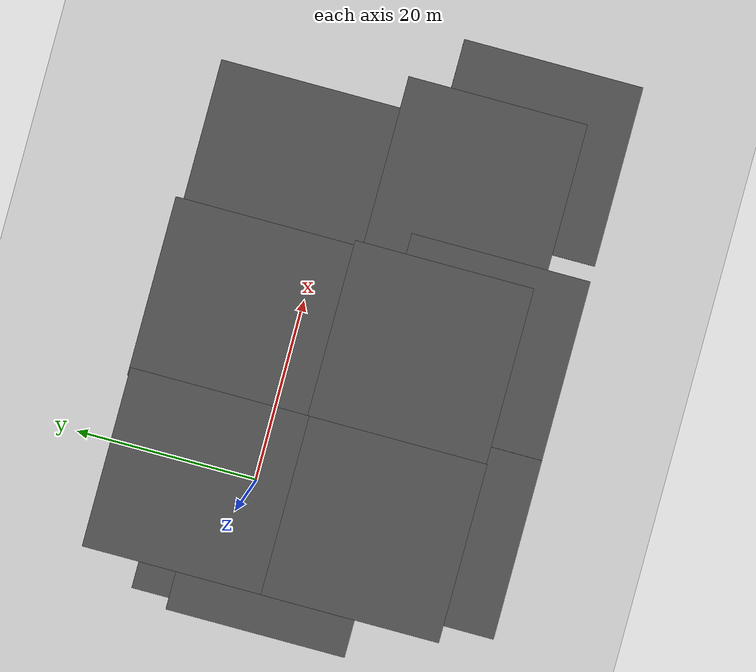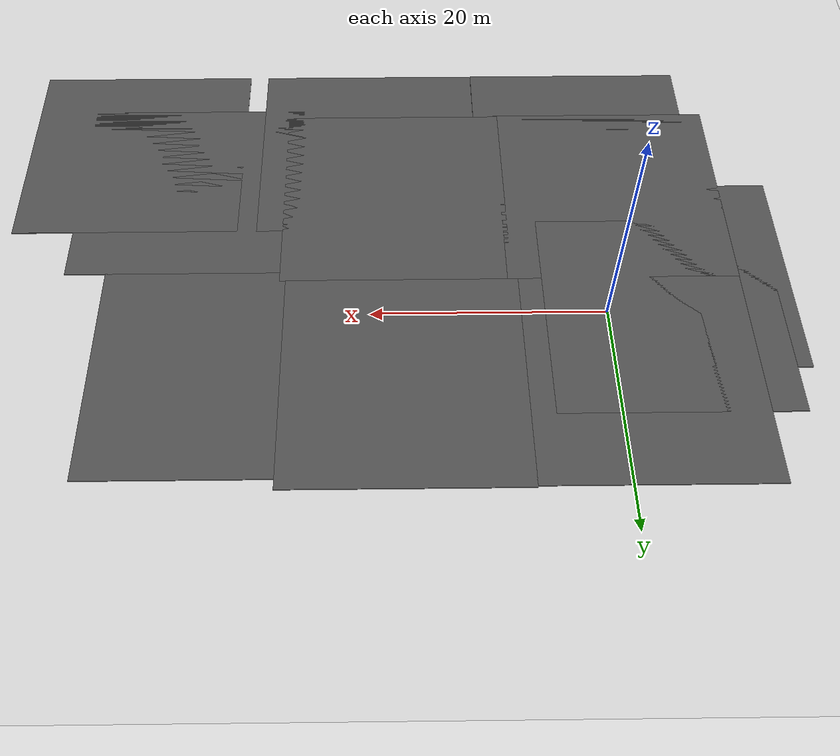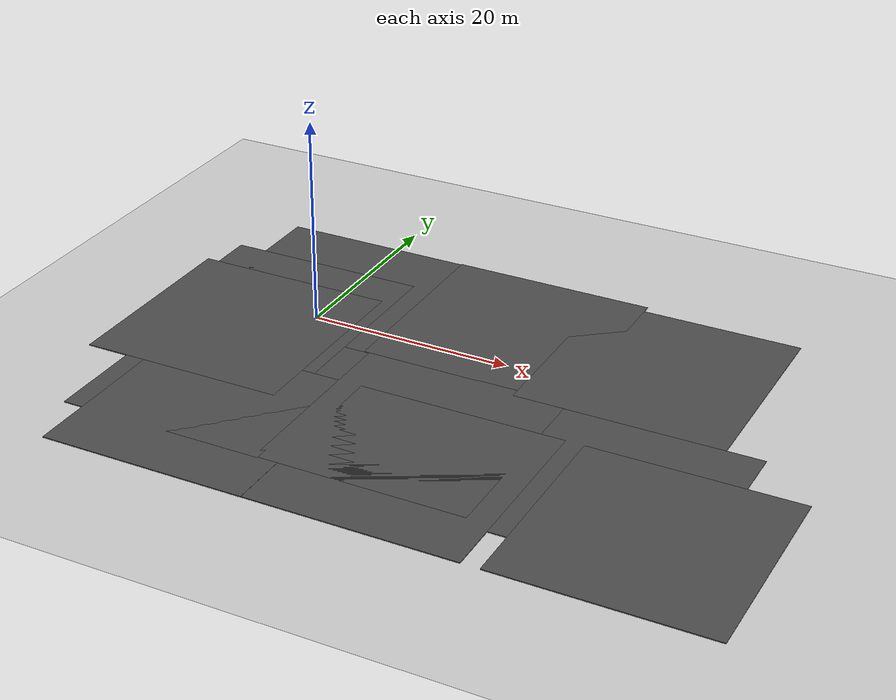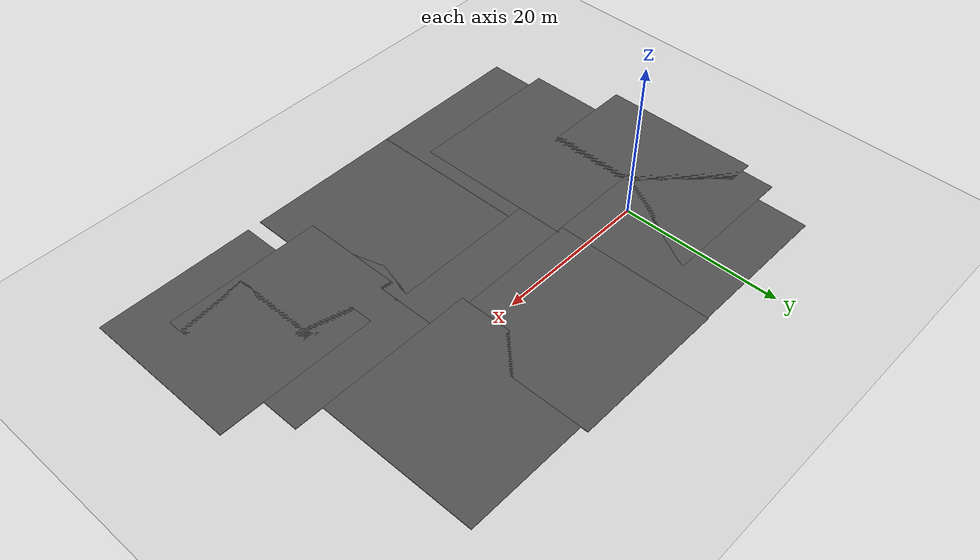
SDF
<sdf version="1.7">
 <world name="default">
  <light name="sun" type="directional">
   <pose>0 0 10 0 -0 0</pose>
   <diffuse>0.8 0.8 0.8 1</diffuse>
   <specular>0.2 0.2 0.2 1</specular>
   <attenuation>
    <range>1000</range>
    <constant>0.9</constant>
    <linear>0.01</linear>
    <quadratic>0.001</quadratic>
   </attenuation>
   <direction>-0.5 0.1 -0.9</direction>
   <spot><inner_angle>0</inner_angle><outer_angle>0</outer_angle><falloff>0</falloff></spot>
  </light>
  <model name="ground_plane">
   <static>1</static>
   <link name="link">
    <collision name="collision">
     <geometry><plane><normal>0 0 1</normal><size>100 100</size></plane></geometry>
     <surface><friction><ode><mu>100</mu><mu2>50</mu2></ode></friction></surface>
    </collision>
    <visual name="visual">
     <cast_shadows>0</cast_shadows>
     <geometry><plane><normal>0 0 1</normal><size>100 100</size></plane></geometry>
     <material>
      <script><uri>file://media/materials/scripts/gazebo.material</uri><name>Gazebo/Grey</name></script>
     </material>
    </visual>
   </link>
  </model>
  <gravity>0 0 -9.8</gravity>
  <magnetic_field>6e-06 2.3e-05 -4.2e-05</magnetic_field>
  <atmosphere type="adiabatic"/>
  <physics type="ode">
   <max_step_size>0.001</max_step_size>
   <real_time_factor>1</real_time_factor>
   <real_time_update_rate>1000</real_time_update_rate>
  </physics>
  <scene><ambient>0.4 0.4 0.4 1</ambient><background>0.7 0.7 0.7 1</background><shadows>1</shadows></scene>
  <spherical_coordinates>
   <surface_model>EARTH_WGS84</surface_model>
   <latitude_deg>0</latitude_deg>
   <longitude_deg>0</longitude_deg>
   <elevation>0</elevation>
   <heading_deg>0</heading_deg>
  </spherical_coordinates>
  <model name="asphalt_plane">
   <static>1</static>
   <link name="link">
    <collision name="collision"><geometry><box><size>20 20 0.1</size></box></geometry></collision>
    <visual name="visual">
     <cast_shadows>0</cast_shadows>
     <geometry><box><size>20 20 0.1</size></box></geometry>
     <material>
      <script>
       <uri>model://asphalt_plane/materials/scripts</uri>
       <uri>model://asphalt_plane/materials/textures</uri>
       <name>vrc/asphalt</name>
      </script>
     </material>
    </visual>
   </link>
   <pose>-1.82326 6.22056 0 0 -0 0</pose>
  </model>
  <model name="asphalt_plane_0">
   <static>1</static>
   <link name="link">
    <collision name="collision"><geometry><box><size>20 20 0.1</size></box></geometry></collision>
    <visual name="visual">
     <cast_shadows>0</cast_shadows>
     <geometry><box><size>20 20 0.1</size></box></geometry>
     <material>
      <script>
       <uri>model://asphalt_plane/materials/scripts</uri>
       <uri>model://asphalt_plane/materials/textures</uri>
       <name>vrc/asphalt</name>
      </script>
     </material>
    </visual>
   </link>
   <pose>-1.84175 -13.6895 0 0 -0 0</pose>
  </model>
  <model name="asphalt_plane_1">
   <static>1</static>
   <link name="link">
    <collision name="collision"><geometry><box><size>20 20 0.1</size></box></geometry></collision>
    <visual name="visual">
     <cast_shadows>0</cast_shadows>
     <geometry><box><size>20 20 0.1</size></box></geometry>
     <material>
      <script>
       <uri>model://asphalt_plane/materials/scripts</uri>
       <uri>model://asphalt_plane/materials/textures</uri>
       <name>vrc/asphalt</name>
      </script>
     </material>
    </visual>
   </link>
   <pose>17.7823 -13.5879 0 0 -0 0</pose>
  </model>
  <model name="asphalt_plane_2">
   <static>1</static>
   <link name="link">
    <collision name="collision"><geometry><box><size>20 20 0.1</size></box></geometry></collision>
    <visual name="visual">
     <cast_shadows>0</cast_shadows>
     <geometry><box><size>20 20 0.1</size></box></geometry>
     <material>
      <script>
       <uri>model://asphalt_plane/materials/scripts</uri>
       <uri>model://asphalt_plane/materials/textures</uri>
       <name>vrc/asphalt</name>
      </script>
     </material>
    </visual>
   </link>
   <pose>17.2667 6.33274 0 0 -0 0</pose>
  </model>
  <model name="asphalt_plane_3">
   <static>1</static>
   <link name="link">
    <collision name="collision"><geometry><box><size>20 20 0.1</size></box></geometry></collision>
    <visual name="visual">
     <cast_shadows>0</cast_shadows>
     <geometry><box><size>20 20 0.1</size></box></geometry>
     <material>
      <script>
       <uri>model://asphalt_plane/materials/scripts</uri>
       <uri>model://asphalt_plane/materials/textures</uri>
       <name>vrc/asphalt</name>
      </script>
     </material>
    </visual>
   </link>
   <pose>32.8329 5.45203 0 0 -0 0</pose>
  </model>
  <model name="asphalt_plane_4">
   <static>1</static>
   <link name="link">
    <collision name="collision"><geometry><box><size>20 20 0.1</size></box></geometry></collision>
    <visual name="visual">
     <cast_shadows>0</cast_shadows>
     <geometry><box><size>20 20 0.1</size></box></geometry>
     <material>
      <script>
       <uri>model://asphalt_plane/materials/scripts</uri>
       <uri>model://asphalt_plane/materials/textures</uri>
       <name>vrc/asphalt</name>
      </script>
     </material>
    </visual>
   </link>
   <pose>-6.02996 -4.28035 0 0 -0 0</pose>
  </model>
  <model name="asphalt_plane_5">
   <static>1</static>
   <link name="link">
    <collision name="collision"><geometry><box><size>20 20 0.1</size></box></geometry></collision>
    <visual name="visual">
     <cast_shadows>0</cast_shadows>
     <geometry><box><size>20 20 0.1</size></box></geometry>
     <material>
      <script>
       <uri>model://asphalt_plane/materials/scripts</uri>
       <uri>model://asphalt_plane/materials/textures</uri>
       <name>vrc/asphalt</name>
      </script>
     </material>
    </visual>
   </link>
   <pose>-4.7543 -0.124474 0 0 -0 0</pose>
  </model>
  <model name="asphalt_plane_6">
   <static>1</static>
   <link name="link">
    <collision name="collision"><geometry><box><size>20 20 0.1</size></box></geometry></collision>
    <visual name="visual">
     <cast_shadows>0</cast_shadows>
     <geometry><box><size>20 20 0.1</size></box></geometry>
     <material>
      <script>
       <uri>model://asphalt_plane/materials/scripts</uri>
       <uri>model://asphalt_plane/materials/textures</uri>
       <name>vrc/asphalt</name>
      </script>
     </material>
    </visual>
   </link>
   <pose>0.080374 -19.2931 0 0 -0 0</pose>
  </model>
  <model name="asphalt_plane_7">
   <static>1</static>
   <link name="link">
    <collision name="collision"><geometry><box><size>20 20 0.1</size></box></geometry></collision>
    <visual name="visual">
     <cast_shadows>0</cast_shadows>
     <geometry><box><size>20 20 0.1</size></box></geometry>
     <material>
      <script>
       <uri>model://asphalt_plane/materials/scripts</uri>
       <uri>model://asphalt_plane/materials/textures</uri>
       <name>vrc/asphalt</name>
      </script>
     </material>
    </visual>
   </link>
   <pose>20.0929 -19.2823 0 0 -0 0</pose>
  </model>
  <model name="asphalt_plane_8">
   <static>1</static>
   <link name="link">
    <collision name="collision"><geometry><box><size>20 20 0.1</size></box></geometry></collision>
    <visual name="visual">
     <cast_shadows>0</cast_shadows>
     <geometry><box><size>20 20 0.1</size></box></geometry>
     <material>
      <script>
       <uri>model://asphalt_plane/materials/scripts</uri>
       <uri>model://asphalt_plane/materials/textures</uri>
       <name>vrc/asphalt</name>
      </script>
     </material>
    </visual>
   </link>
   <pose>36.3716 -14.5279 0 0 -0 0</pose>
  </model>
  <model name="asphalt_plane_9">
   <static>1</static>
   <link name="link">
    <collision name="collision"><geometry><box><size>20 20 0.1</size></box></geometry></collision>
    <visual name="visual">
     <cast_shadows>0</cast_shadows>
     <geometry><box><size>20 20 0.1</size></box></geometry>
     <material>
      <script>
       <uri>model://asphalt_plane/materials/scripts</uri>
       <uri>model://asphalt_plane/materials/textures</uri>
       <name>vrc/asphalt</name>
      </script>
     </material>
    </visual>
   </link>
   <pose>41.8069 -19.2858 0 0 -0 0</pose>
  </model>
 </world>
</sdf>
